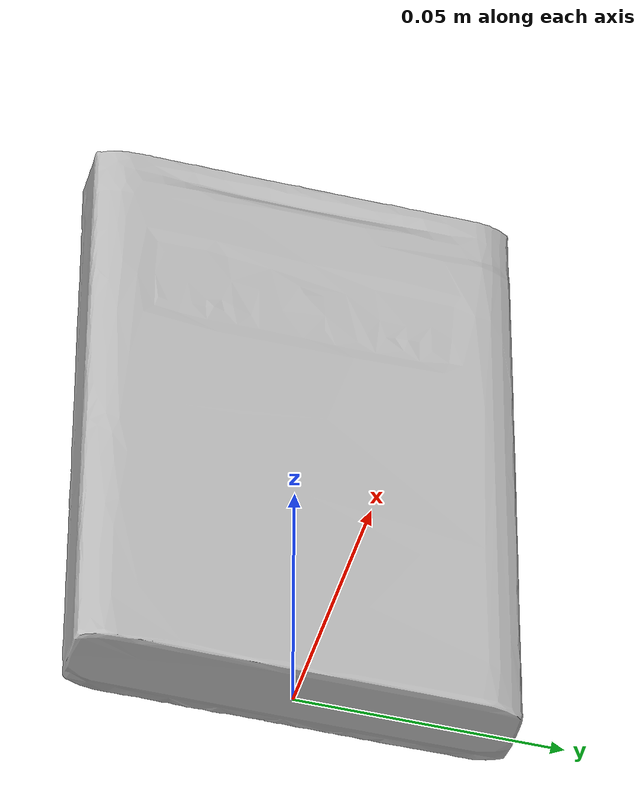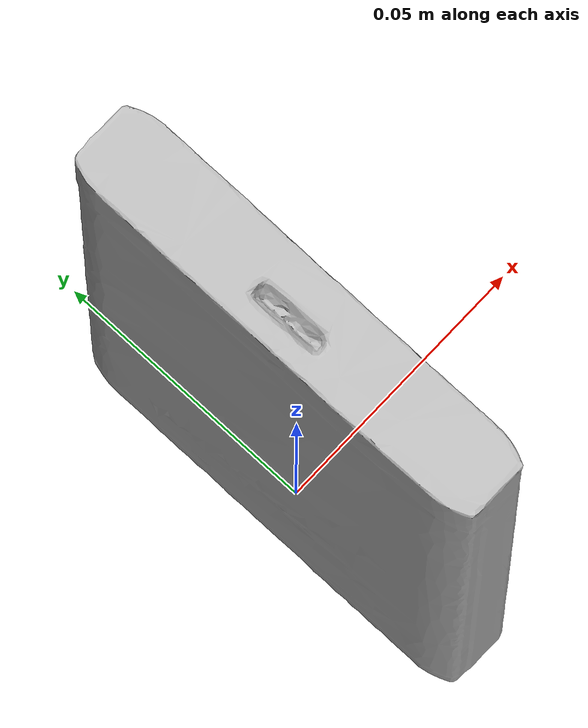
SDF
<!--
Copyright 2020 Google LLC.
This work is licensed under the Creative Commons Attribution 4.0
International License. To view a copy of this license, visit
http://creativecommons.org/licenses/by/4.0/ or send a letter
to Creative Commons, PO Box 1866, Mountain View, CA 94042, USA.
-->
<?xml version="1.0" ?>
<sdf version="1.6">
  <model name="Seagate_1TB_Backup_Plus_portable_drive_Blue">
    <link name="link_0">
      <visual name="visual">
        <geometry>
          <mesh>
            <uri>meshes/model.obj</uri>
          </mesh>
        </geometry>
      </visual>
      <collision name="collision_0">
        <geometry>
          <mesh>
            <uri>meshes/model.obj</uri>
          </mesh>
        </geometry>
      </collision>
    </link>
  </model>
</sdf>
